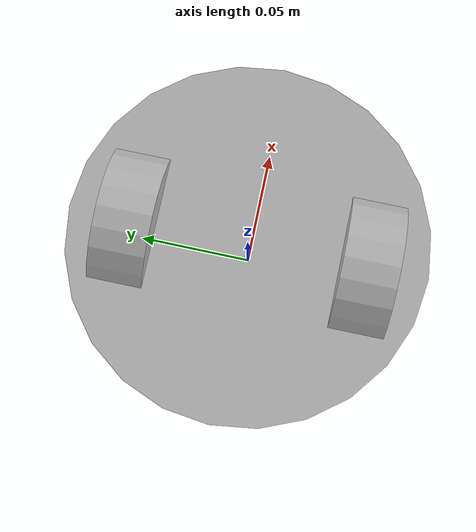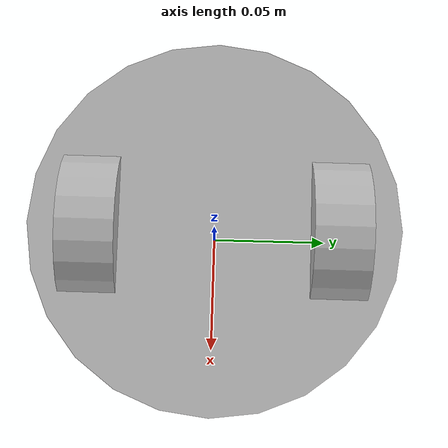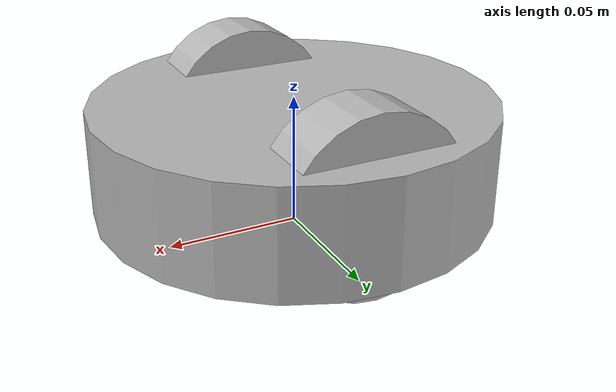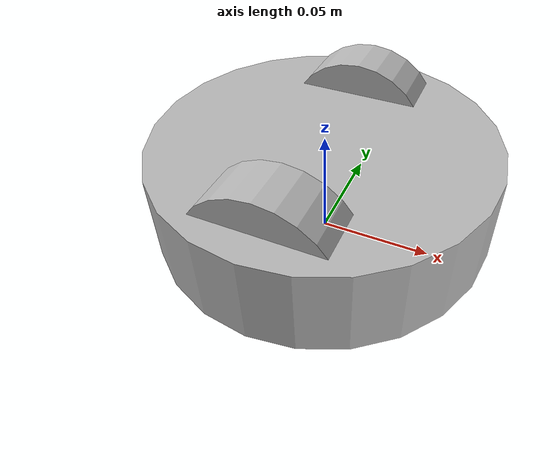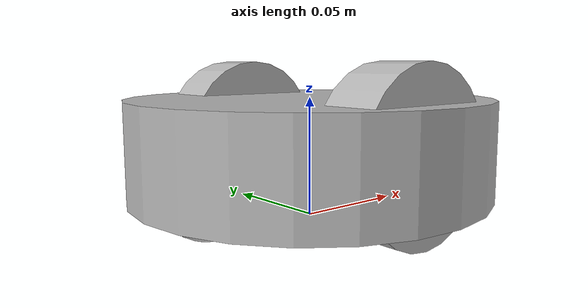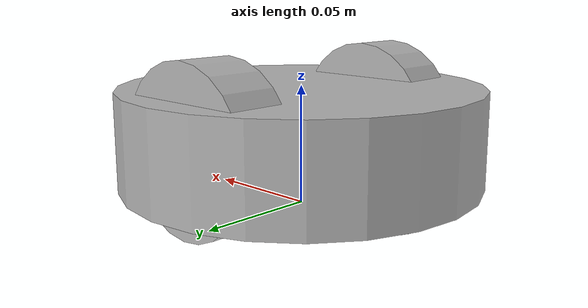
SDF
<?xml version='1.0'?>
<sdf version='1.6'>
    <model name='car'>

        <link name="base">
            <inertial>
                <pose>0.001453 -0.000453 0.029787 0 0 0</pose>
                <inertia>
                    <ixx>0.003005</ixx>
                    <ixy>0</ixy>
                    <ixz>0</ixz>
                    <iyy>0.03005</iyy>
                    <iyz>0</iyz>
                    <izz>0.05476</izz>
                </inertia>
                <mass>2.0</mass>
            </inertial>
            <collision name="base_collision">
                <pose>0 0 0.047800 0 0 0</pose>
                <geometry>
                    <cylinder>
                        <radius>0.075</radius>
                        <length>0.04</length>
                    </cylinder>
                </geometry>
            </collision>
            <visual name="base_visual">
                <pose>0 0 0.03 0 0 0</pose>
                <geometry>
                    <cylinder>
                        <radius>0.075</radius>
                        <length>0.04</length>
                    </cylinder>
                </geometry>
            </visual>
            <collision name="front_wheel_collision">
                <pose>0.05 0 0.017000 0 1.570700 1.570700</pose>
                <geometry>
                    <sphere>
                        <radius>0.018000</radius>
                    </sphere>
                </geometry>
                <surface>
                    <friction>
                        <ode>
                            <mu>0</mu>
                        </ode>
                    </friction>
                </surface>
            </collision>
            <visual name="front_wheel_visual">
                <pose>0.05 0 0.017000 0 1.570700 1.570700</pose>
                <geometry>
                    <sphere>
                        <radius>0.018</radius>
                    </sphere>
                </geometry>
            </visual>
            <collision name="rear_wheel_collision">
                <pose>-0.05 0 0.017 0 1.5707 1.5707</pose>
                <geometry>
                    <sphere>
                        <radius>0.015000</radius>
                    </sphere>
                </geometry>
                <surface>
                    <friction>
                        <ode>
                            <mu>0</mu>
                        </ode>
                    </friction>
                </surface>
            </collision>
            <visual name="rear_wheel_visual">
                <pose>-0.05 0 0.017000 0 1.570700 1.570700</pose>
                <geometry>
                    <sphere>
                        <radius>0.018</radius>
                    </sphere>
                </geometry>
            </visual>
        </link>
        <link name="left_wheel">
            <pose>0 0.05 0.032000 0 0 0</pose>
            <inertial>
                <inertia>
                    <!-- having these inertias is what makes the model not spin all over the place -->
                    <ixx>0.001000</ixx>
                    <ixy>0</ixy>
                    <ixz>0</ixz>
                    <iyy>0.001000</iyy>
                    <iyz>0</iyz>
                    <izz>0.001000</izz>
                </inertia>
                <mass>0.010000</mass>
            </inertial>
            <collision name="collision">
                <pose>0 0 0 0 1.570700 1.570700</pose>
                <geometry>
                    <cylinder>
                        <radius>0.033000</radius>
                        <length>0.023000</length>
                    </cylinder>
                </geometry>
                <surface>
                    <friction>
                        <ode>
                            <mu>10</mu>
                        </ode>
                    </friction>
                </surface>
            </collision>
            <visual name="visual">
                <pose>0 0 0 0 1.570700 1.570700</pose>
                <geometry>
                    <cylinder>
                        <radius>0.033000</radius>
                        <length>0.023000</length>
                    </cylinder>
                </geometry>
            </visual>
        </link>
        <link name="right_wheel">
            <pose>0 -0.05 0.032000 0 0 0</pose>
            <inertial>
                <inertia>
                    <ixx>0.001000</ixx>
                    <ixy>0</ixy>
                    <ixz>0</ixz>
                    <iyy>0.001000</iyy>
                    <iyz>0</iyz>
                    <izz>0.001000</izz>
                </inertia>
                <mass>0.010000</mass>
            </inertial>
            <collision name="collision">
                <pose>0 0 0 0 1.570700 1.570700</pose>
                <geometry>
                    <cylinder>
                        <radius>0.033000</radius>
                        <length>0.023000</length>
                    </cylinder>
                </geometry>
                <surface>
                    <friction>
                        <ode>
                            <mu>10</mu>
                        </ode>
                    </friction>
                </surface>
            </collision>
            <visual name="visual">
                <pose>0 0 0 0 1.570700 1.570700</pose>
                <geometry>
                    <cylinder>
                        <radius>0.033000</radius>
                        <length>0.023000</length>
                    </cylinder>
                </geometry>
            </visual>
        </link>
        <joint name="left_wheel" type="revolute">
            <parent>base</parent>
            <child>left_wheel</child>
            <axis>
                <xyz>0 1 0</xyz>
                <use_parent_model_frame>true</use_parent_model_frame>
                <dynamics>
                    <friction>0.001</friction>
                    <damping>0.0002</damping>
                </dynamics>
            </axis>
        </joint>
        <joint name="right_wheel" type="revolute">
            <parent>base</parent>
            <child>right_wheel</child>
            <axis>
                <xyz>0 1 0</xyz>
                <use_parent_model_frame>true</use_parent_model_frame>
                <dynamics>
                    <friction>0.001</friction>
                    <damping>0.0002</damping>
                </dynamics>
            </axis>
        </joint>

        <plugin name="car_plugin" filename="libcar_plugin.so">
            <kP_vel>0.01</kP_vel>
            <kFF_vel>0.004</kFF_vel>
            <max_force>0.05</max_force>
        </plugin>
    </model>
</sdf>
